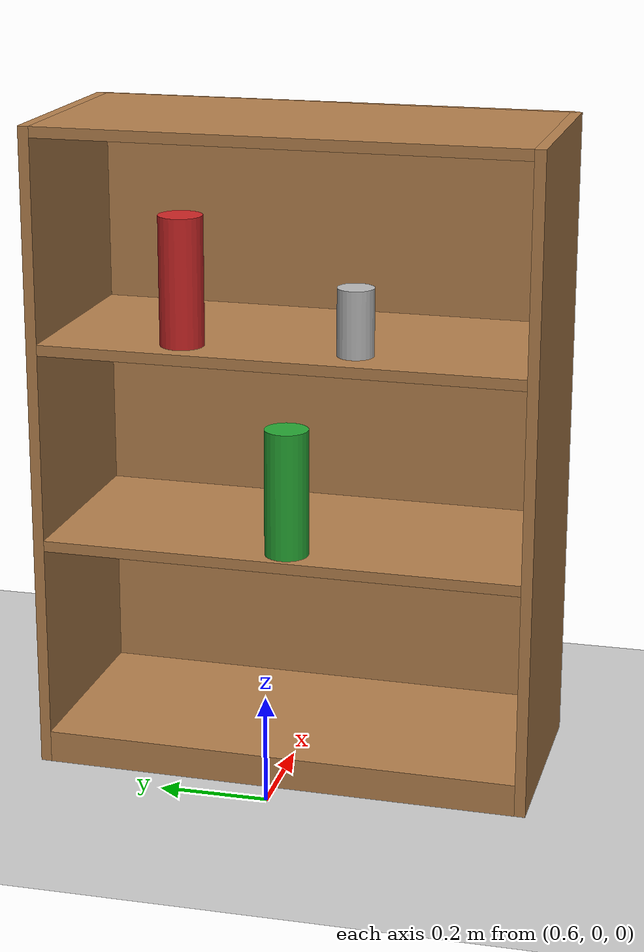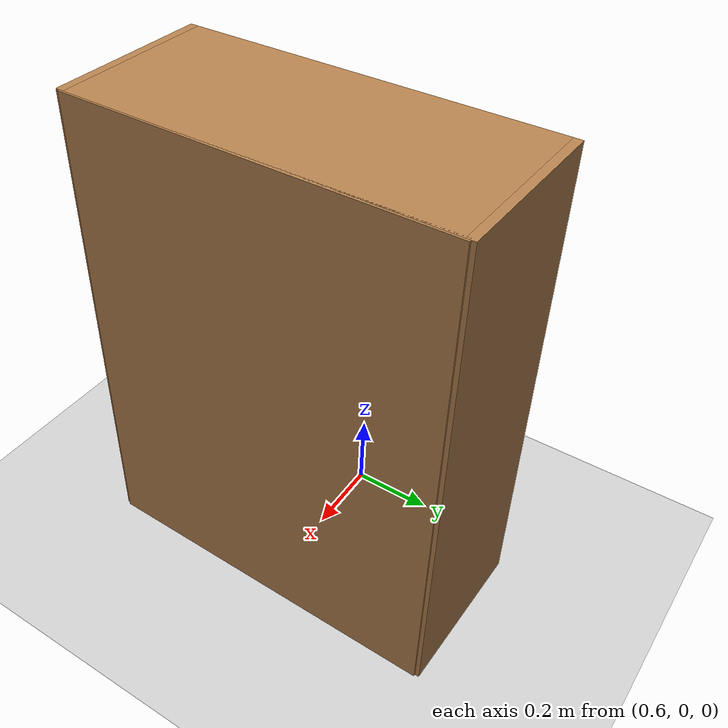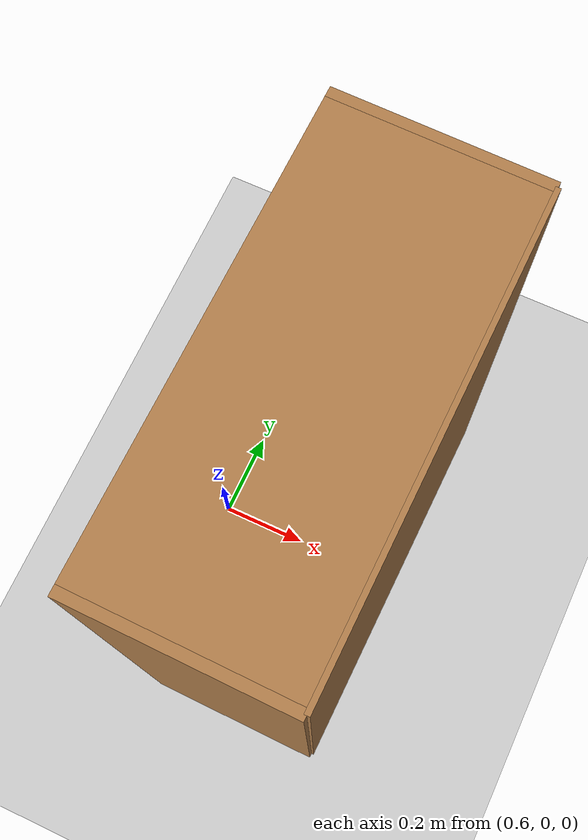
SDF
<sdf version="1.6">
 <world name="default">
  <light name="sun" type="directional">
   <pose>0 0 10 0 -0 0</pose>
   <diffuse>0.8 0.8 0.8 1</diffuse>
   <specular>0.2 0.2 0.2 1</specular>
   <attenuation>
    <range>1000</range>
    <constant>0.9</constant>
    <linear>0.01</linear>
    <quadratic>0.001</quadratic>
   </attenuation>
   <direction>-0.5 0.1 -0.9</direction>
  </light>
  <model name="ground_plane">
   <static>1</static>
   <link name="link">
    <collision name="collision">
     <geometry><plane><normal>0 0 1</normal><size>100 100</size></plane></geometry>
     <surface><friction><ode><mu>100</mu><mu2>50</mu2></ode></friction></surface>
    </collision>
    <visual name="visual">
     <cast_shadows>0</cast_shadows>
     <geometry><plane><normal>0 0 1</normal><size>100 100</size></plane></geometry>
     <material>
      <script><uri>file://media/materials/scripts/gazebo.material</uri><name>Gazebo/Grey</name></script>
     </material>
    </visual>
   </link>
  </model>
  <gravity>0 0 -9.8</gravity>
  <magnetic_field>6e-06 2.3e-05 -4.2e-05</magnetic_field>
  <atmosphere type="adiabatic"/>
  <physics name="default_physics" default="0" type="ode">
   <max_step_size>0.001</max_step_size>
   <real_time_factor>1</real_time_factor>
   <real_time_update_rate>1000</real_time_update_rate>
  </physics>
  <scene><ambient>0.4 0.4 0.4 1</ambient><background>0.7 0.7 0.7 1</background><shadows>1</shadows></scene>
  <spherical_coordinates>
   <surface_model>EARTH_WGS84</surface_model>
   <latitude_deg>0</latitude_deg>
   <longitude_deg>0</longitude_deg>
   <elevation>0</elevation>
   <heading_deg>0</heading_deg>
  </spherical_coordinates>
  <model name="bookshelf">
   <static>1</static>
   <link name="link">
    <inertial><mass>1</mass></inertial>
    <collision name="back">
     <pose>0 0.005 0.6 0 -0 0</pose>
     <geometry><box><size>0.9 0.01 1.2</size></box></geometry>
    </collision>
    <visual name="visual1">
     <pose>0 0.005 0.6 0 -0 0</pose>
     <geometry><box><size>0.9 0.01 1.2</size></box></geometry>
     <material>
      <script><uri>file://media/materials/scripts/gazebo.material</uri><name>Gazebo/Wood</name></script>
     </material>
    </visual>
    <collision name="left_side">
     <pose>0.45 -0.195 0.6 0 -0 0</pose>
     <geometry><box><size>0.02 0.4 1.2</size></box></geometry>
    </collision>
    <visual name="visual2">
     <pose>0.45 -0.195 0.6 0 -0 0</pose>
     <geometry><box><size>0.02 0.4 1.2</size></box></geometry>
     <material>
      <script><uri>file://media/materials/scripts/gazebo.material</uri><name>Gazebo/Wood</name></script>
     </material>
    </visual>
    <collision name="right_side">
     <pose>-0.45 -0.195 0.6 0 -0 0</pose>
     <geometry><box><size>0.02 0.4 1.2</size></box></geometry>
    </collision>
    <visual name="visual3">
     <pose>-0.45 -0.195 0.6 0 -0 0</pose>
     <geometry><box><size>0.02 0.4 1.2</size></box></geometry>
     <material>
      <script><uri>file://media/materials/scripts/gazebo.material</uri><name>Gazebo/Wood</name></script>
     </material>
    </visual>
    <collision name="bottom">
     <pose>0 -0.195 0.03 0 -0 0</pose>
     <geometry><box><size>0.88 0.4 0.06</size></box></geometry>
    </collision>
    <visual name="visual4">
     <pose>0 -0.195 0.03 0 -0 0</pose>
     <geometry><box><size>0.88 0.4 0.06</size></box></geometry>
     <material>
      <script><uri>file://media/materials/scripts/gazebo.material</uri><name>Gazebo/Wood</name></script>
     </material>
    </visual>
    <collision name="top">
     <pose>0 -0.195 1.19 0 -0 0</pose>
     <geometry><box><size>0.88 0.4 0.02</size></box></geometry>
    </collision>
    <visual name="visual5">
     <pose>0 -0.195 1.19 0 -0 0</pose>
     <geometry><box><size>0.88 0.4 0.02</size></box></geometry>
     <material>
      <script><uri>file://media/materials/scripts/gazebo.material</uri><name>Gazebo/Wood</name></script>
     </material>
    </visual>
    <collision name="low_shelf">
     <pose>0 -0.195 0.43 0 -0 0</pose>
     <geometry><box><size>0.88 0.4 0.02</size></box></geometry>
    </collision>
    <visual name="visual6">
     <pose>0 -0.195 0.43 0 -0 0</pose>
     <geometry><box><size>0.88 0.4 0.02</size></box></geometry>
     <material>
      <script><uri>file://media/materials/scripts/gazebo.material</uri><name>Gazebo/Wood</name></script>
     </material>
    </visual>
    <collision name="high_shelf">
     <pose>0 -0.195 0.8 0 -0 0</pose>
     <geometry><box><size>0.88 0.4 0.02</size></box></geometry>
    </collision>
    <visual name="visual7">
     <pose>0 -0.195 0.8 0 -0 0</pose>
     <geometry><box><size>0.88 0.4 0.02</size></box></geometry>
     <material>
      <script><uri>file://media/materials/scripts/gazebo.material</uri><name>Gazebo/Wood</name></script>
     </material>
    </visual>
   </link>
   <pose>1.04738 -0.012677 0 0 0 -1.58933</pose>
  </model>
  <model name="cocacola">
   <pose>0.727034 -0.131307 0.870955 0 -0 0</pose>
   <link name="link">
    <inertial>
     <mass>0.39</mass>
     <inertia><ixx>0.00058</ixx><ixy>0</ixy><ixz>0</ixz><iyy>0.00058</iyy><iyz>0</iyz><izz>0.00019</izz></inertia>
    </inertial>
    <collision name="collision">
     <geometry><cylinder><radius>0.03302</radius><length>0.12268</length></cylinder></geometry>
     <surface>
      <contact><ode><min_depth>0.005</min_depth></ode></contact>
      <friction><ode><mu>0.9</mu><mu2>0.9</mu2></ode></friction>
     </surface>
    </collision>
    <visual name="visual">
     <geometry><cylinder><radius>0.03302</radius><length>0.12268</length></cylinder></geometry>
     <material>
      <script>
       <uri>model://cocacola/materials/scripts</uri>
       <uri>model://cocacola/materials/textures</uri>
       <name>CocaCola/Diffuse</name>
      </script>
     </material>
    </visual>
   </link>
  </model>
  <model name="pringles_red">
   <pose>0.724687 0.183287 0.92725 4e-06 3e-06 1.59577</pose>
   <link name="link">
    <inertial>
     <mass>0.2</mass>
     <inertia>
      <ixx>0.000908</ixx>
      <ixy>0</ixy>
      <ixz>0</ixz>
      <iyy>0.000908</iyy>
      <iyz>0</iyz>
      <izz>0.0002025</izz>
     </inertia>
    </inertial>
    <collision name="collision">
     <geometry><cylinder><radius>0.04</radius><length>0.235</length></cylinder></geometry>
     <surface>
      <contact><ode><min_depth>0.005</min_depth></ode></contact>
      <friction><ode><mu>0.9</mu><mu2>0.9</mu2></ode></friction>
     </surface>
    </collision>
    <visual name="visual">
     <pose>0 0 0 3.1415 -0 0</pose>
     <geometry><cylinder><radius>0.04</radius><length>0.235</length></cylinder></geometry>
     <material>
      <script>
       <uri>model://pringles_red/material/scripts</uri>
       <uri>model://pringles_red/material/textures</uri>
       <name>Custom/PringlesRed</name>
      </script>
     </material>
    </visual>
   </link>
  </model>
  <model name="pringles_green">
   <pose>0.702302 -0.012908 0.557074 2e-06 2e-06 0</pose>
   <link name="link">
    <inertial>
     <mass>0.2</mass>
     <inertia>
      <ixx>0.000908</ixx>
      <ixy>0</ixy>
      <ixz>0</ixz>
      <iyy>0.000908</iyy>
      <iyz>0</iyz>
      <izz>0.0002025</izz>
     </inertia>
    </inertial>
    <collision name="collision">
     <geometry><cylinder><radius>0.04</radius><length>0.235</length></cylinder></geometry>
     <surface>
      <contact><ode><min_depth>0.005</min_depth></ode></contact>
      <friction><ode><mu>0.9</mu><mu2>0.9</mu2></ode></friction>
     </surface>
    </collision>
    <visual name="visual">
     <geometry><cylinder><radius>0.04</radius><length>0.235</length></cylinder></geometry>
     <material>
      <script>
       <uri>model://pringles_green/material/scripts</uri>
       <uri>model://pringles_green/material/textures</uri>
       <name>Custom/PringlesGreen</name>
      </script>
     </material>
    </visual>
   </link>
  </model>
 </world>
</sdf>
